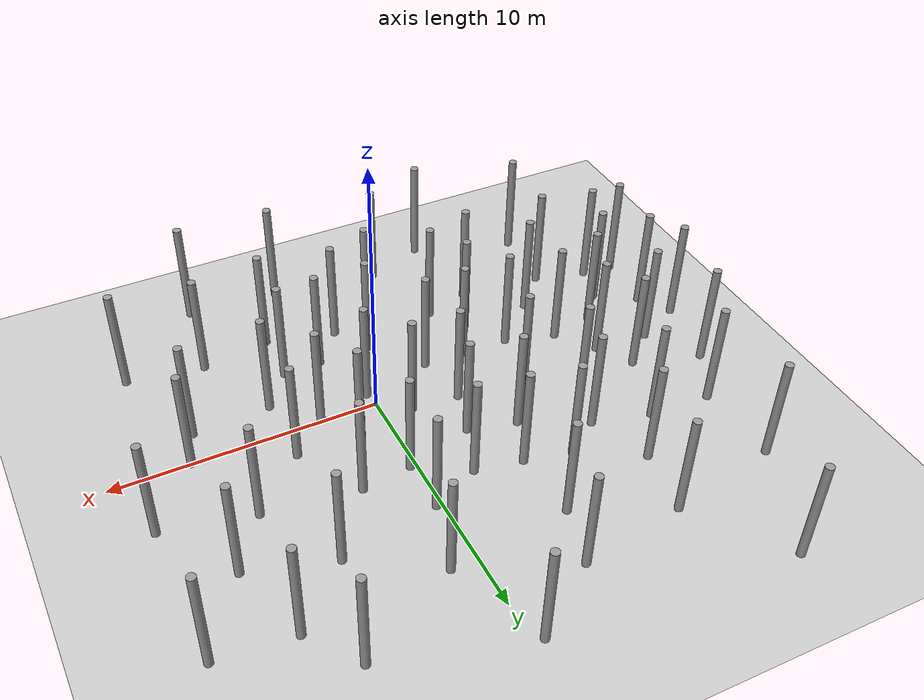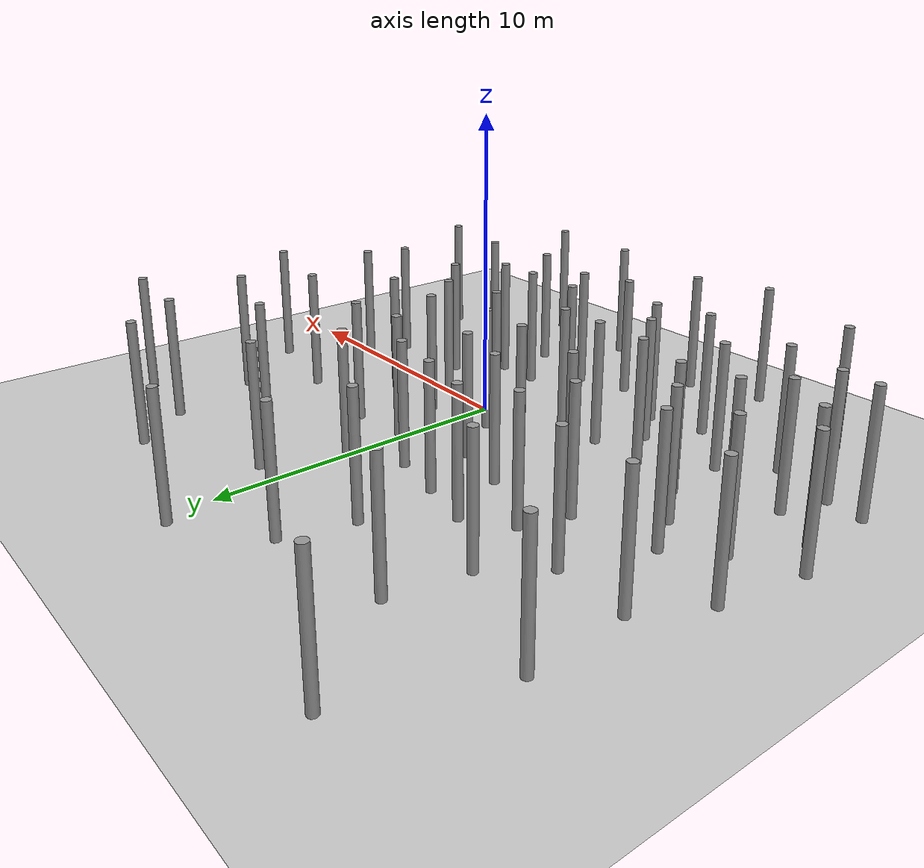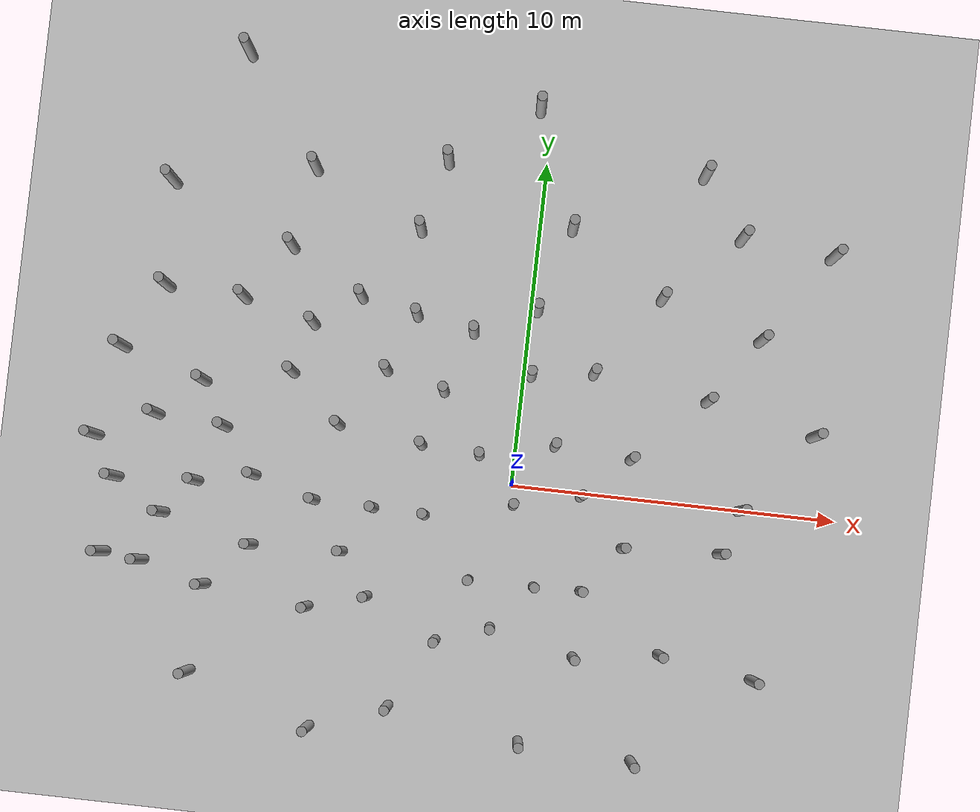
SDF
<sdf version="1.7">
 <world name="default">
  <model name="ground_plane">
   <static>1</static>
   <link name="link">
    <collision name="collision">
     <geometry><plane><normal>0 0 1</normal><size>100 100</size></plane></geometry>
     <surface>
      <contact><collide_bitmask>65535</collide_bitmask></contact>
      <friction><ode><mu>100</mu><mu2>50</mu2></ode></friction>
     </surface>
    </collision>
    <visual name="visual">
     <cast_shadows>0</cast_shadows>
     <geometry><plane><normal>0 0 1</normal><size>100 100</size></plane></geometry>
     <material>
      <script><uri>file://media/materials/scripts/gazebo.material</uri><name>Gazebo/Grey</name></script>
     </material>
    </visual>
   </link>
  </model>
  <gravity>0 0 -9.8</gravity>
  <magnetic_field>6e-06 2.3e-05 -4.2e-05</magnetic_field>
  <atmosphere type="adiabatic"/>
  <physics type="ode">
   <max_step_size>0.001</max_step_size>
   <real_time_factor>1</real_time_factor>
   <real_time_update_rate>1000</real_time_update_rate>
  </physics>
  <scene><ambient>0.4 0.4 0.4 1</ambient><background>0.7 0.7 0.7 1</background><shadows>1</shadows></scene>
  <spherical_coordinates>
   <surface_model>EARTH_WGS84</surface_model>
   <latitude_deg>0</latitude_deg>
   <longitude_deg>0</longitude_deg>
   <elevation>0</elevation>
   <heading_deg>0</heading_deg>
  </spherical_coordinates>
  <model name="unit_cylinder_clone">
   <pose>3.56282 -1.52585 2.03419 0 0 -0.080417</pose>
   <link name="link">
    <inertial>
     <mass>1</mass>
     <inertia><ixx>0.145833</ixx><ixy>0</ixy><ixz>0</ixz><iyy>0.145833</iyy><iyz>0</iyz><izz>0.125</izz></inertia>
    </inertial>
    <collision name="collision">
     <geometry><cylinder><radius>0.15453</radius><length>4.06839</length></cylinder></geometry>
    </collision>
    <visual name="visual">
     <geometry><cylinder><radius>0.15453</radius><length>4.06839</length></cylinder></geometry>
     <material>
      <script><name>Gazebo/Grey</name><uri>file://media/materials/scripts/gazebo.material</uri></script>
     </material>
    </visual>
   </link>
  </model>
  <model name="unit_cylinder_clone_0">
   <pose>3.54015 1.18763 2.03419 0 0 -0.066603</pose>
   <link name="link">
    <inertial>
     <mass>1</mass>
     <inertia><ixx>0.145833</ixx><ixy>0</ixy><ixz>0</ixz><iyy>0.145833</iyy><iyz>0</iyz><izz>0.125</izz></inertia>
    </inertial>
    <collision name="collision">
     <geometry><cylinder><radius>0.15453</radius><length>4.06839</length></cylinder></geometry>
    </collision>
    <visual name="visual">
     <geometry><cylinder><radius>0.15453</radius><length>4.06839</length></cylinder></geometry>
     <material>
      <script><name>Gazebo/Grey</name><uri>file://media/materials/scripts/gazebo.material</uri></script>
     </material>
    </visual>
   </link>
  </model>
  <light name="user_directional_light_0" type="directional">
   <pose>-4.64306 0.087706 1 0 -0 0</pose>
   <diffuse>0.5 0.5 0.5 1</diffuse>
   <specular>0.1 0.1 0.1 1</specular>
   <direction>0.1 0.1 -0.9</direction>
   <attenuation>
    <range>20</range>
    <constant>0.5</constant>
    <linear>0.01</linear>
    <quadratic>0.001</quadratic>
   </attenuation>
   <spot><inner_angle>0</inner_angle><outer_angle>0</outer_angle><falloff>0</falloff></spot>
  </light>
  <model name="unit_cylinder_clone_0_clone_clone_5">
   <pose>-5.44413 1.27278 2.03419 0 0 -0.077731</pose>
   <link name="link">
    <inertial>
     <mass>1</mass>
     <inertia><ixx>0.145833</ixx><ixy>0</ixy><ixz>0</ixz><iyy>0.145833</iyy><iyz>0</iyz><izz>0.125</izz></inertia>
    </inertial>
    <collision name="collision">
     <geometry><cylinder><radius>0.15453</radius><length>4.06839</length></cylinder></geometry>
    </collision>
    <visual name="visual">
     <geometry><cylinder><radius>0.15453</radius><length>4.06839</length></cylinder></geometry>
     <material>
      <script><name>Gazebo/Grey</name><uri>file://media/materials/scripts/gazebo.material</uri></script>
     </material>
    </visual>
   </link>
  </model>
  <model name="unit_cylinder_clone_0_clone_clone_4_clone">
   <pose>-4.13256 -1.13531 2.03419 0 0 -0.076185</pose>
   <link name="link">
    <inertial>
     <mass>1</mass>
     <inertia><ixx>0.145833</ixx><ixy>0</ixy><ixz>0</ixz><iyy>0.145833</iyy><iyz>0</iyz><izz>0.125</izz></inertia>
    </inertial>
    <collision name="collision">
     <geometry><cylinder><radius>0.15453</radius><length>4.06839</length></cylinder></geometry>
    </collision>
    <visual name="visual">
     <geometry><cylinder><radius>0.15453</radius><length>4.06839</length></cylinder></geometry>
     <material>
      <script><name>Gazebo/Grey</name><uri>file://media/materials/scripts/gazebo.material</uri></script>
     </material>
    </visual>
   </link>
  </model>
  <model name="unit_cylinder_clone_0_clone_clone_4_clone_1">
   <pose>1.18499 1.34128 2.03419 0 0 -0.122178</pose>
   <link name="link">
    <inertial>
     <mass>1</mass>
     <inertia><ixx>0.145833</ixx><ixy>0</ixy><ixz>0</ixz><iyy>0.145833</iyy><iyz>0</iyz><izz>0.125</izz></inertia>
    </inertial>
    <collision name="collision">
     <geometry><cylinder><radius>0.15453</radius><length>4.06839</length></cylinder></geometry>
    </collision>
    <visual name="visual">
     <geometry><cylinder><radius>0.15453</radius><length>4.06839</length></cylinder></geometry>
     <material>
      <script><name>Gazebo/Grey</name><uri>file://media/materials/scripts/gazebo.material</uri></script>
     </material>
    </visual>
   </link>
  </model>
  <model name="unit_cylinder_clone_0_clone_clone_4_clone_3">
   <pose>-12.7821 0.162313 2.03419 0 0 -0.079303</pose>
   <link name="link">
    <inertial>
     <mass>1</mass>
     <inertia><ixx>0.145833</ixx><ixy>0</ixy><ixz>0</ixz><iyy>0.145833</iyy><iyz>0</iyz><izz>0.125</izz></inertia>
    </inertial>
    <collision name="collision">
     <geometry><cylinder><radius>0.15453</radius><length>4.06839</length></cylinder></geometry>
    </collision>
    <visual name="visual">
     <geometry><cylinder><radius>0.15453</radius><length>4.06839</length></cylinder></geometry>
     <material>
      <script><name>Gazebo/Grey</name><uri>file://media/materials/scripts/gazebo.material</uri></script>
     </material>
    </visual>
   </link>
  </model>
  <model name="unit_cylinder_clone_0_clone_clone_1_clone_0">
   <pose>-2.55899 -1.17866 2.03419 0 0 -0.07945</pose>
   <link name="link">
    <inertial>
     <mass>1</mass>
     <inertia><ixx>0.145833</ixx><ixy>0</ixy><ixz>0</ixz><iyy>0.145833</iyy><iyz>0</iyz><izz>0.125</izz></inertia>
    </inertial>
    <collision name="collision">
     <geometry><cylinder><radius>0.15453</radius><length>4.06839</length></cylinder></geometry>
    </collision>
    <visual name="visual">
     <geometry><cylinder><radius>0.15453</radius><length>4.06839</length></cylinder></geometry>
     <material>
      <script><name>Gazebo/Grey</name><uri>file://media/materials/scripts/gazebo.material</uri></script>
     </material>
    </visual>
   </link>
  </model>
  <model name="unit_cylinder_clone_0_clone_clone_10_clone">
   <pose>-8.888 0.841534 2.03419 0 0 -0.078226</pose>
   <link name="link">
    <inertial>
     <mass>1</mass>
     <inertia><ixx>0.145833</ixx><ixy>0</ixy><ixz>0</ixz><iyy>0.145833</iyy><iyz>0</iyz><izz>0.125</izz></inertia>
    </inertial>
    <collision name="collision">
     <geometry><cylinder><radius>0.15453</radius><length>4.06839</length></cylinder></geometry>
    </collision>
    <visual name="visual">
     <geometry><cylinder><radius>0.15453</radius><length>4.06839</length></cylinder></geometry>
     <material>
      <script><name>Gazebo/Grey</name><uri>file://media/materials/scripts/gazebo.material</uri></script>
     </material>
    </visual>
   </link>
  </model>
  <model name="unit_cylinder_clone_0_clone_clone_4_clone_0_clone">
   <pose>2.13275 -0.105282 2.03419 0 0 -0.082582</pose>
   <link name="link">
    <inertial>
     <mass>1</mass>
     <inertia><ixx>0.145833</ixx><ixy>0</ixy><ixz>0</ixz><iyy>0.145833</iyy><iyz>0</iyz><izz>0.125</izz></inertia>
    </inertial>
    <collision name="collision">
     <geometry><cylinder><radius>0.15453</radius><length>4.06839</length></cylinder></geometry>
    </collision>
    <visual name="visual">
     <geometry><cylinder><radius>0.15453</radius><length>4.06839</length></cylinder></geometry>
     <material>
      <script><name>Gazebo/Grey</name><uri>file://media/materials/scripts/gazebo.material</uri></script>
     </material>
    </visual>
   </link>
  </model>
  <model name="unit_cylinder_clone_0_clone_clone_4_clone_0_clone_0">
   <pose>-1.07819 0.818908 2.03419 0 0 -0.080683</pose>
   <link name="link">
    <inertial>
     <mass>1</mass>
     <inertia><ixx>0.145833</ixx><ixy>0</ixy><ixz>0</ixz><iyy>0.145833</iyy><iyz>0</iyz><izz>0.125</izz></inertia>
    </inertial>
    <collision name="collision">
     <geometry><cylinder><radius>0.15453</radius><length>4.06839</length></cylinder></geometry>
    </collision>
    <visual name="visual">
     <geometry><cylinder><radius>0.15453</radius><length>4.06839</length></cylinder></geometry>
     <material>
      <script><name>Gazebo/Grey</name><uri>file://media/materials/scripts/gazebo.material</uri></script>
     </material>
    </visual>
   </link>
  </model>
  <model name="unit_cylinder_clone_0_clone_clone_1_clone_0_clone">
   <pose>0.118793 -0.584123 2.03419 0 0 -0.106499</pose>
   <link name="link">
    <inertial>
     <mass>1</mass>
     <inertia><ixx>0.145833</ixx><ixy>0</ixy><ixz>0</ixz><iyy>0.145833</iyy><iyz>0</iyz><izz>0.125</izz></inertia>
    </inertial>
    <collision name="collision">
     <geometry><cylinder><radius>0.15453</radius><length>4.06839</length></cylinder></geometry>
    </collision>
    <visual name="visual">
     <geometry><cylinder><radius>0.15453</radius><length>4.06839</length></cylinder></geometry>
     <material>
      <script><name>Gazebo/Grey</name><uri>file://media/materials/scripts/gazebo.material</uri></script>
     </material>
    </visual>
   </link>
  </model>
  <model name="unit_cylinder_clone_0_clone_clone_1_clone_0_clone_0">
   <pose>-2.87341 0.941535 2.03419 0 0 -0.07922</pose>
   <link name="link">
    <inertial>
     <mass>1</mass>
     <inertia><ixx>0.145833</ixx><ixy>0</ixy><ixz>0</ixz><iyy>0.145833</iyy><iyz>0</iyz><izz>0.125</izz></inertia>
    </inertial>
    <collision name="collision">
     <geometry><cylinder><radius>0.15453</radius><length>4.06839</length></cylinder></geometry>
    </collision>
    <visual name="visual">
     <geometry><cylinder><radius>0.15453</radius><length>4.06839</length></cylinder></geometry>
     <material>
      <script><name>Gazebo/Grey</name><uri>file://media/materials/scripts/gazebo.material</uri></script>
     </material>
    </visual>
   </link>
  </model>
  <model name="unit_cylinder_clone_0_clone_clone_1_clone_0_clone_2">
   <pose>-10.9993 1.00066 2.03419 0 0 -0.077661</pose>
   <link name="link">
    <inertial>
     <mass>1</mass>
     <inertia><ixx>0.145833</ixx><ixy>0</ixy><ixz>0</ixz><iyy>0.145833</iyy><iyz>0</iyz><izz>0.125</izz></inertia>
    </inertial>
    <collision name="collision">
     <geometry><cylinder><radius>0.15453</radius><length>4.06839</length></cylinder></geometry>
    </collision>
    <visual name="visual">
     <geometry><cylinder><radius>0.15453</radius><length>4.06839</length></cylinder></geometry>
     <material>
      <script><name>Gazebo/Grey</name><uri>file://media/materials/scripts/gazebo.material</uri></script>
     </material>
    </visual>
   </link>
  </model>
  <model name="unit_cylinder_clone_0_clone_clone_10_clone_2">
   <pose>-5.95223 -1.08544 2.03419 0 0 -0.078125</pose>
   <link name="link">
    <inertial>
     <mass>1</mass>
     <inertia><ixx>0.145833</ixx><ixy>0</ixy><ixz>0</ixz><iyy>0.145833</iyy><iyz>0</iyz><izz>0.125</izz></inertia>
    </inertial>
    <collision name="collision">
     <geometry><cylinder><radius>0.15453</radius><length>4.06839</length></cylinder></geometry>
    </collision>
    <visual name="visual">
     <geometry><cylinder><radius>0.15453</radius><length>4.06839</length></cylinder></geometry>
     <material>
      <script><name>Gazebo/Grey</name><uri>file://media/materials/scripts/gazebo.material</uri></script>
     </material>
    </visual>
   </link>
  </model>
  <model name="unit_cylinder_clone_0_clone_clone_10_clone_clone_0_clone_0">
   <pose>-7.8464 -0.530261 2.03419 0 0 -0.039702</pose>
   <link name="link">
    <inertial>
     <mass>1</mass>
     <inertia><ixx>0.145833</ixx><ixy>0</ixy><ixz>0</ixz><iyy>0.145833</iyy><iyz>0</iyz><izz>0.125</izz></inertia>
    </inertial>
    <collision name="collision">
     <geometry><cylinder><radius>0.15453</radius><length>4.06839</length></cylinder></geometry>
    </collision>
    <visual name="visual">
     <geometry><cylinder><radius>0.15453</radius><length>4.06839</length></cylinder></geometry>
     <material>
      <script><name>Gazebo/Grey</name><uri>file://media/materials/scripts/gazebo.material</uri></script>
     </material>
    </visual>
   </link>
  </model>
  <model name="unit_cylinder_clone_0_clone_clone_4_clone_3_clone">
   <pose>-12.0371 -1.03779 2.03419 0 0 -0.079229</pose>
   <link name="link">
    <inertial>
     <mass>1</mass>
     <inertia><ixx>0.145833</ixx><ixy>0</ixy><ixz>0</ixz><iyy>0.145833</iyy><iyz>0</iyz><izz>0.125</izz></inertia>
    </inertial>
    <collision name="collision">
     <geometry><cylinder><radius>0.15453</radius><length>4.06839</length></cylinder></geometry>
    </collision>
    <visual name="visual">
     <geometry><cylinder><radius>0.15453</radius><length>4.06839</length></cylinder></geometry>
     <material>
      <script><name>Gazebo/Grey</name><uri>file://media/materials/scripts/gazebo.material</uri></script>
     </material>
    </visual>
   </link>
  </model>
  <model name="unit_cylinder_clone_0_clone_clone_4_clone_3_clone_0">
   <pose>-10.5056 -1.9675 2.03419 0 0 -0.079203</pose>
   <link name="link">
    <inertial>
     <mass>1</mass>
     <inertia><ixx>0.145833</ixx><ixy>0</ixy><ixz>0</ixz><iyy>0.145833</iyy><iyz>0</iyz><izz>0.125</izz></inertia>
    </inertial>
    <collision name="collision">
     <geometry><cylinder><radius>0.15453</radius><length>4.06839</length></cylinder></geometry>
    </collision>
    <visual name="visual">
     <geometry><cylinder><radius>0.15453</radius><length>4.06839</length></cylinder></geometry>
     <material>
      <script><name>Gazebo/Grey</name><uri>file://media/materials/scripts/gazebo.material</uri></script>
     </material>
    </visual>
   </link>
  </model>
  <model name="unit_cylinder_clone_0_clone_clone_4_clone_3_clone_1">
   <pose>-9.58441 -0.897949 2.03419 0 0 -0.078933</pose>
   <link name="link">
    <inertial>
     <mass>1</mass>
     <inertia><ixx>0.145833</ixx><ixy>0</ixy><ixz>0</ixz><iyy>0.145833</iyy><iyz>0</iyz><izz>0.125</izz></inertia>
    </inertial>
    <collision name="collision">
     <geometry><cylinder><radius>0.15453</radius><length>4.06839</length></cylinder></geometry>
    </collision>
    <visual name="visual">
     <geometry><cylinder><radius>0.15453</radius><length>4.06839</length></cylinder></geometry>
     <material>
      <script><name>Gazebo/Grey</name><uri>file://media/materials/scripts/gazebo.material</uri></script>
     </material>
    </visual>
   </link>
  </model>
  <model name="unit_cylinder_clone_0_clone_clone_4_clone_3_clone_2">
   <pose>-12.2416 2.93543 2.03419 0 0 -0.081629</pose>
   <link name="link">
    <inertial>
     <mass>1</mass>
     <inertia><ixx>0.145833</ixx><ixy>0</ixy><ixz>0</ixz><iyy>0.145833</iyy><iyz>0</iyz><izz>0.125</izz></inertia>
    </inertial>
    <collision name="collision">
     <geometry><cylinder><radius>0.15453</radius><length>4.06839</length></cylinder></geometry>
    </collision>
    <visual name="visual">
     <geometry><cylinder><radius>0.15453</radius><length>4.06839</length></cylinder></geometry>
     <material>
      <script><name>Gazebo/Grey</name><uri>file://media/materials/scripts/gazebo.material</uri></script>
     </material>
    </visual>
   </link>
  </model>
  <model name="unit_cylinder_clone_0_clone_clone_4_clone_3_clone_3">
   <pose>-9.67955 2.16879 2.03419 0 0 -0.07764</pose>
   <link name="link">
    <inertial>
     <mass>1</mass>
     <inertia><ixx>0.145833</ixx><ixy>0</ixy><ixz>0</ixz><iyy>0.145833</iyy><iyz>0</iyz><izz>0.125</izz></inertia>
    </inertial>
    <collision name="collision">
     <geometry><cylinder><radius>0.15453</radius><length>4.06839</length></cylinder></geometry>
    </collision>
    <visual name="visual">
     <geometry><cylinder><radius>0.15453</radius><length>4.06839</length></cylinder></geometry>
     <material>
      <script><name>Gazebo/Grey</name><uri>file://media/materials/scripts/gazebo.material</uri></script>
     </material>
    </visual>
   </link>
  </model>
  <model name="unit_cylinder_clone_0_clone_clone_4_clone_3_clone_4">
   <pose>-8.72412 4.82345 2.03419 0 0 -0.079536</pose>
   <link name="link">
    <inertial>
     <mass>1</mass>
     <inertia><ixx>0.145833</ixx><ixy>0</ixy><ixz>0</ixz><iyy>0.145833</iyy><iyz>0</iyz><izz>0.125</izz></inertia>
    </inertial>
    <collision name="collision">
     <geometry><cylinder><radius>0.15453</radius><length>4.06839</length></cylinder></geometry>
    </collision>
    <visual name="visual">
     <geometry><cylinder><radius>0.15453</radius><length>4.06839</length></cylinder></geometry>
     <material>
      <script><name>Gazebo/Grey</name><uri>file://media/materials/scripts/gazebo.material</uri></script>
     </material>
    </visual>
   </link>
  </model>
  <model name="unit_cylinder_clone_0_clone_clone_4_clone_3_clone_5">
   <pose>-7.02012 2.71779 2.03419 0 0 -0.077233</pose>
   <link name="link">
    <inertial>
     <mass>1</mass>
     <inertia><ixx>0.145833</ixx><ixy>0</ixy><ixz>0</ixz><iyy>0.145833</iyy><iyz>0</iyz><izz>0.125</izz></inertia>
    </inertial>
    <collision name="collision">
     <geometry><cylinder><radius>0.15453</radius><length>4.06839</length></cylinder></geometry>
    </collision>
    <visual name="visual">
     <geometry><cylinder><radius>0.15453</radius><length>4.06839</length></cylinder></geometry>
     <material>
      <script><name>Gazebo/Grey</name><uri>file://media/materials/scripts/gazebo.material</uri></script>
     </material>
    </visual>
   </link>
  </model>
  <model name="unit_cylinder_clone_0_clone_clone_4_clone_3_clone_6">
   <pose>-8.99968 -3.99971 2.03419 0 0 -0.077397</pose>
   <link name="link">
    <inertial>
     <mass>1</mass>
     <inertia><ixx>0.145833</ixx><ixy>0</ixy><ixz>0</ixz><iyy>0.145833</iyy><iyz>0</iyz><izz>0.125</izz></inertia>
    </inertial>
    <collision name="collision">
     <geometry><cylinder><radius>0.15453</radius><length>4.06839</length></cylinder></geometry>
    </collision>
    <visual name="visual">
     <geometry><cylinder><radius>0.15453</radius><length>4.06839</length></cylinder></geometry>
     <material>
      <script><name>Gazebo/Grey</name><uri>file://media/materials/scripts/gazebo.material</uri></script>
     </material>
    </visual>
   </link>
  </model>
  <model name="unit_cylinder_clone_0_clone_clone_10_clone_clone_0_clone_0_clone">
   <pose>-7.69252 -2.64606 2.03419 0 0 -0.040415</pose>
   <link name="link">
    <inertial>
     <mass>1</mass>
     <inertia><ixx>0.145833</ixx><ixy>0</ixy><ixz>0</ixz><iyy>0.145833</iyy><iyz>0</iyz><izz>0.125</izz></inertia>
    </inertial>
    <collision name="collision">
     <geometry><cylinder><radius>0.15453</radius><length>4.06839</length></cylinder></geometry>
    </collision>
    <visual name="visual">
     <geometry><cylinder><radius>0.15453</radius><length>4.06839</length></cylinder></geometry>
     <material>
      <script><name>Gazebo/Grey</name><uri>file://media/materials/scripts/gazebo.material</uri></script>
     </material>
    </visual>
   </link>
  </model>
  <model name="unit_cylinder_clone_0_clone_clone_10_clone_clone_0_clone_0_clone_0">
   <pose>-6.5513 4.26632 2.03419 0 0 -0.040332</pose>
   <link name="link">
    <inertial>
     <mass>1</mass>
     <inertia><ixx>0.145833</ixx><ixy>0</ixy><ixz>0</ixz><iyy>0.145833</iyy><iyz>0</iyz><izz>0.125</izz></inertia>
    </inertial>
    <collision name="collision">
     <geometry><cylinder><radius>0.15453</radius><length>4.06839</length></cylinder></geometry>
    </collision>
    <visual name="visual">
     <geometry><cylinder><radius>0.15453</radius><length>4.06839</length></cylinder></geometry>
     <material>
      <script><name>Gazebo/Grey</name><uri>file://media/materials/scripts/gazebo.material</uri></script>
     </material>
    </visual>
   </link>
  </model>
  <model name="unit_cylinder_clone_0_clone_clone_10_clone_clone_0_clone_0_clone_1">
   <pose>-4.1708 3.08791 2.03419 0 0 -0.03936</pose>
   <link name="link">
    <inertial>
     <mass>1</mass>
     <inertia><ixx>0.145833</ixx><ixy>0</ixy><ixz>0</ixz><iyy>0.145833</iyy><iyz>0</iyz><izz>0.125</izz></inertia>
    </inertial>
    <collision name="collision">
     <geometry><cylinder><radius>0.15453</radius><length>4.06839</length></cylinder></geometry>
    </collision>
    <visual name="visual">
     <geometry><cylinder><radius>0.15453</radius><length>4.06839</length></cylinder></geometry>
     <material>
      <script><name>Gazebo/Grey</name><uri>file://media/materials/scripts/gazebo.material</uri></script>
     </material>
    </visual>
   </link>
  </model>
  <model name="unit_cylinder_clone_0_clone_clone_10_clone_clone_0_clone_0_clone_2">
   <pose>-5.80436 -4.34099 2.03419 0 0 -0.037518</pose>
   <link name="link">
    <inertial>
     <mass>1</mass>
     <inertia><ixx>0.145833</ixx><ixy>0</ixy><ixz>0</ixz><iyy>0.145833</iyy><iyz>0</iyz><izz>0.125</izz></inertia>
    </inertial>
    <collision name="collision">
     <geometry><cylinder><radius>0.15453</radius><length>4.06839</length></cylinder></geometry>
    </collision>
    <visual name="visual">
     <geometry><cylinder><radius>0.15453</radius><length>4.06839</length></cylinder></geometry>
     <material>
      <script><name>Gazebo/Grey</name><uri>file://media/materials/scripts/gazebo.material</uri></script>
     </material>
    </visual>
   </link>
  </model>
  <model name="unit_cylinder_clone_0_clone_clone_10_clone_clone_0_clone_0_clone_3">
   <pose>-4.03808 -3.83532 2.03419 0 0 -0.039812</pose>
   <link name="link">
    <inertial>
     <mass>1</mass>
     <inertia><ixx>0.145833</ixx><ixy>0</ixy><ixz>0</ixz><iyy>0.145833</iyy><iyz>0</iyz><izz>0.125</izz></inertia>
    </inertial>
    <collision name="collision">
     <geometry><cylinder><radius>0.15453</radius><length>4.06839</length></cylinder></geometry>
    </collision>
    <visual name="visual">
     <geometry><cylinder><radius>0.15453</radius><length>4.06839</length></cylinder></geometry>
     <material>
      <script><name>Gazebo/Grey</name><uri>file://media/materials/scripts/gazebo.material</uri></script>
     </material>
    </visual>
   </link>
  </model>
  <model name="unit_cylinder_clone_0_clone_clone_10_clone_clone_0_clone_0_clone_4">
   <pose>-0.999747 -2.99977 2.03419 0 0 -0.039479</pose>
   <link name="link">
    <inertial>
     <mass>1</mass>
     <inertia><ixx>0.145833</ixx><ixy>0</ixy><ixz>0</ixz><iyy>0.145833</iyy><iyz>0</iyz><izz>0.125</izz></inertia>
    </inertial>
    <collision name="collision">
     <geometry><cylinder><radius>0.15453</radius><length>4.06839</length></cylinder></geometry>
    </collision>
    <visual name="visual">
     <geometry><cylinder><radius>0.15453</radius><length>4.06839</length></cylinder></geometry>
     <material>
      <script><name>Gazebo/Grey</name><uri>file://media/materials/scripts/gazebo.material</uri></script>
     </material>
    </visual>
   </link>
  </model>
  <model name="unit_cylinder_clone_0_clone_clone_10_clone_clone_0_clone_0_clone_5">
   <pose>-1.6541 4.52771 2.03419 0 0 -0.036042</pose>
   <link name="link">
    <inertial>
     <mass>1</mass>
     <inertia><ixx>0.145833</ixx><ixy>0</ixy><ixz>0</ixz><iyy>0.145833</iyy><iyz>0</iyz><izz>0.125</izz></inertia>
    </inertial>
    <collision name="collision">
     <geometry><cylinder><radius>0.15453</radius><length>4.06839</length></cylinder></geometry>
    </collision>
    <visual name="visual">
     <geometry><cylinder><radius>0.15453</radius><length>4.06839</length></cylinder></geometry>
     <material>
      <script><name>Gazebo/Grey</name><uri>file://media/materials/scripts/gazebo.material</uri></script>
     </material>
    </visual>
   </link>
  </model>
  <model name="unit_cylinder_clone_0_clone_clone_10_clone_clone_0_clone_0_clone_6">
   <pose>-2.36154 2.63582 2.03419 0 0 -0.039524</pose>
   <link name="link">
    <inertial>
     <mass>1</mass>
     <inertia><ixx>0.145833</ixx><ixy>0</ixy><ixz>0</ixz><iyy>0.145833</iyy><iyz>0</iyz><izz>0.125</izz></inertia>
    </inertial>
    <collision name="collision">
     <geometry><cylinder><radius>0.15453</radius><length>4.06839</length></cylinder></geometry>
    </collision>
    <visual name="visual">
     <geometry><cylinder><radius>0.15453</radius><length>4.06839</length></cylinder></geometry>
     <material>
      <script><name>Gazebo/Grey</name><uri>file://media/materials/scripts/gazebo.material</uri></script>
     </material>
    </visual>
   </link>
  </model>
  <model name="unit_cylinder_clone_0_clone_clone_10_clone_clone_0_clone_0_clone_7">
   <pose>-5.17253 5.22792 2.03419 0 0 -0.039548</pose>
   <link name="link">
    <inertial>
     <mass>1</mass>
     <inertia><ixx>0.145833</ixx><ixy>0</ixy><ixz>0</ixz><iyy>0.145833</iyy><iyz>0</iyz><izz>0.125</izz></inertia>
    </inertial>
    <collision name="collision">
     <geometry><cylinder><radius>0.15453</radius><length>4.06839</length></cylinder></geometry>
    </collision>
    <visual name="visual">
     <geometry><cylinder><radius>0.15453</radius><length>4.06839</length></cylinder></geometry>
     <material>
      <script><name>Gazebo/Grey</name><uri>file://media/materials/scripts/gazebo.material</uri></script>
     </material>
    </visual>
   </link>
  </model>
  <model name="unit_cylinder_clone_0_clone_clone_10_clone_clone_0_clone_0_clone_8">
   <pose>0.228824 3.40053 2.03419 0 0 -0.039519</pose>
   <link name="link">
    <inertial>
     <mass>1</mass>
     <inertia><ixx>0.145833</ixx><ixy>0</ixy><ixz>0</ixz><iyy>0.145833</iyy><iyz>0</iyz><izz>0.125</izz></inertia>
    </inertial>
    <collision name="collision">
     <geometry><cylinder><radius>0.15453</radius><length>4.06839</length></cylinder></geometry>
    </collision>
    <visual name="visual">
     <geometry><cylinder><radius>0.15453</radius><length>4.06839</length></cylinder></geometry>
     <material>
      <script><name>Gazebo/Grey</name><uri>file://media/materials/scripts/gazebo.material</uri></script>
     </material>
    </visual>
   </link>
  </model>
  <model name="unit_cylinder_clone_0_clone_clone_10_clone_clone_0_clone_0_clone_9">
   <pose>1.0002 -2.99981 2.03419 0 0 -0.039671</pose>
   <link name="link">
    <inertial>
     <mass>1</mass>
     <inertia><ixx>0.145833</ixx><ixy>0</ixy><ixz>0</ixz><iyy>0.145833</iyy><iyz>0</iyz><izz>0.125</izz></inertia>
    </inertial>
    <collision name="collision">
     <geometry><cylinder><radius>0.15453</radius><length>4.06839</length></cylinder></geometry>
    </collision>
    <visual name="visual">
     <geometry><cylinder><radius>0.15453</radius><length>4.06839</length></cylinder></geometry>
     <material>
      <script><name>Gazebo/Grey</name><uri>file://media/materials/scripts/gazebo.material</uri></script>
     </material>
    </visual>
   </link>
  </model>
  <model name="unit_cylinder_clone_0_clone_clone_10_clone_clone_0_clone_0_clone_10">
   <pose>-1.80537 -4.94179 2.03419 0 0 -0.039617</pose>
   <link name="link">
    <inertial>
     <mass>1</mass>
     <inertia><ixx>0.145833</ixx><ixy>0</ixy><ixz>0</ixz><iyy>0.145833</iyy><iyz>0</iyz><izz>0.125</izz></inertia>
    </inertial>
    <collision name="collision">
     <geometry><cylinder><radius>0.15453</radius><length>4.06839</length></cylinder></geometry>
    </collision>
    <visual name="visual">
     <geometry><cylinder><radius>0.15453</radius><length>4.06839</length></cylinder></geometry>
     <material>
      <script><name>Gazebo/Grey</name><uri>file://media/materials/scripts/gazebo.material</uri></script>
     </material>
    </visual>
   </link>
  </model>
  <model name="unit_cylinder_clone_0_clone_clone_10_clone_clone_0_clone_0_clone_11">
   <pose>-12.1699 -3.35103 2.03419 0 0 -0.039742</pose>
   <link name="link">
    <inertial>
     <mass>1</mass>
     <inertia><ixx>0.145833</ixx><ixy>0</ixy><ixz>0</ixz><iyy>0.145833</iyy><iyz>0</iyz><izz>0.125</izz></inertia>
    </inertial>
    <collision name="collision">
     <geometry><cylinder><radius>0.15453</radius><length>4.06839</length></cylinder></geometry>
    </collision>
    <visual name="visual">
     <geometry><cylinder><radius>0.15453</radius><length>4.06839</length></cylinder></geometry>
     <material>
      <script><name>Gazebo/Grey</name><uri>file://media/materials/scripts/gazebo.material</uri></script>
     </material>
    </visual>
   </link>
  </model>
  <model name="unit_cylinder_clone_0_clone_clone_10_clone_clone_0_clone_0_clone_12">
   <pose>-11.1103 4.93311 2.03419 0 0 -0.039255</pose>
   <link name="link">
    <inertial>
     <mass>1</mass>
     <inertia><ixx>0.145833</ixx><ixy>0</ixy><ixz>0</ixz><iyy>0.145833</iyy><iyz>0</iyz><izz>0.125</izz></inertia>
    </inertial>
    <collision name="collision">
     <geometry><cylinder><radius>0.15453</radius><length>4.06839</length></cylinder></geometry>
    </collision>
    <visual name="visual">
     <geometry><cylinder><radius>0.15453</radius><length>4.06839</length></cylinder></geometry>
     <material>
      <script><name>Gazebo/Grey</name><uri>file://media/materials/scripts/gazebo.material</uri></script>
     </material>
    </visual>
   </link>
  </model>
  <model name="unit_cylinder_clone_0_clone_clone_10_clone_clone_0_clone_0_clone_13">
   <pose>-3.42368 4.85319 2.03419 0 0 -0.039469</pose>
   <link name="link">
    <inertial>
     <mass>1</mass>
     <inertia><ixx>0.145833</ixx><ixy>0</ixy><ixz>0</ixz><iyy>0.145833</iyy><iyz>0</iyz><izz>0.125</izz></inertia>
    </inertial>
    <collision name="collision">
     <geometry><cylinder><radius>0.15453</radius><length>4.06839</length></cylinder></geometry>
    </collision>
    <visual name="visual">
     <geometry><cylinder><radius>0.15453</radius><length>4.06839</length></cylinder></geometry>
     <material>
      <script><name>Gazebo/Grey</name><uri>file://media/materials/scripts/gazebo.material</uri></script>
     </material>
    </visual>
   </link>
  </model>
  <model name="unit_cylinder_clone_0_clone_clone_10_clone_clone_0_clone_0_clone_14">
   <pose>0.211594 5.4019 2.03419 0 0 -0.039531</pose>
   <link name="link">
    <inertial>
     <mass>1</mass>
     <inertia><ixx>0.145833</ixx><ixy>0</ixy><ixz>0</ixz><iyy>0.145833</iyy><iyz>0</iyz><izz>0.125</izz></inertia>
    </inertial>
    <collision name="collision">
     <geometry><cylinder><radius>0.15453</radius><length>4.06839</length></cylinder></geometry>
    </collision>
    <visual name="visual">
     <geometry><cylinder><radius>0.15453</radius><length>4.06839</length></cylinder></geometry>
     <material>
      <script><name>Gazebo/Grey</name><uri>file://media/materials/scripts/gazebo.material</uri></script>
     </material>
    </visual>
   </link>
  </model>
  <model name="unit_cylinder_clone_0_clone_clone_10_clone_clone_0_clone_0_clone_15">
   <pose>2.12826 3.66115 2.03419 0 0 -0.039494</pose>
   <link name="link">
    <inertial>
     <mass>1</mass>
     <inertia><ixx>0.145833</ixx><ixy>0</ixy><ixz>0</ixz><iyy>0.145833</iyy><iyz>0</iyz><izz>0.125</izz></inertia>
    </inertial>
    <collision name="collision">
     <geometry><cylinder><radius>0.15453</radius><length>4.06839</length></cylinder></geometry>
    </collision>
    <visual name="visual">
     <geometry><cylinder><radius>0.15453</radius><length>4.06839</length></cylinder></geometry>
     <material>
      <script><name>Gazebo/Grey</name><uri>file://media/materials/scripts/gazebo.material</uri></script>
     </material>
    </visual>
   </link>
  </model>
  <model name="unit_cylinder_clone_0_clone_clone_10_clone_clone_0_clone_0_clone_16">
   <pose>2.43996 -2.96502 2.03419 0 0 -0.039417</pose>
   <link name="link">
    <inertial>
     <mass>1</mass>
     <inertia><ixx>0.145833</ixx><ixy>0</ixy><ixz>0</ixz><iyy>0.145833</iyy><iyz>0</iyz><izz>0.125</izz></inertia>
    </inertial>
    <collision name="collision">
     <geometry><cylinder><radius>0.15453</radius><length>4.06839</length></cylinder></geometry>
    </collision>
    <visual name="visual">
     <geometry><cylinder><radius>0.15453</radius><length>4.06839</length></cylinder></geometry>
     <material>
      <script><name>Gazebo/Grey</name><uri>file://media/materials/scripts/gazebo.material</uri></script>
     </material>
    </visual>
   </link>
  </model>
  <model name="unit_cylinder_clone_0_clone_clone_10_clone_clone_0_clone_0_clone_17">
   <pose>-0.187783 -4.37406 2.03419 0 0 -0.039588</pose>
   <link name="link">
    <inertial>
     <mass>1</mass>
     <inertia><ixx>0.145833</ixx><ixy>0</ixy><ixz>0</ixz><iyy>0.145833</iyy><iyz>0</iyz><izz>0.125</izz></inertia>
    </inertial>
    <collision name="collision">
     <geometry><cylinder><radius>0.15453</radius><length>4.06839</length></cylinder></geometry>
    </collision>
    <visual name="visual">
     <geometry><cylinder><radius>0.15453</radius><length>4.06839</length></cylinder></geometry>
     <material>
      <script><name>Gazebo/Grey</name><uri>file://media/materials/scripts/gazebo.material</uri></script>
     </material>
    </visual>
   </link>
  </model>
  <model name="unit_cylinder_clone_0_clone_clone_10_clone_clone_0_clone_0_clone_18">
   <pose>-4.94163 -2.55816 2.03419 0 0 -0.039466</pose>
   <link name="link">
    <inertial>
     <mass>1</mass>
     <inertia><ixx>0.145833</ixx><ixy>0</ixy><ixz>0</ixz><iyy>0.145833</iyy><iyz>0</iyz><izz>0.125</izz></inertia>
    </inertial>
    <collision name="collision">
     <geometry><cylinder><radius>0.15453</radius><length>4.06839</length></cylinder></geometry>
    </collision>
    <visual name="visual">
     <geometry><cylinder><radius>0.15453</radius><length>4.06839</length></cylinder></geometry>
     <material>
      <script><name>Gazebo/Grey</name><uri>file://media/materials/scripts/gazebo.material</uri></script>
     </material>
    </visual>
   </link>
  </model>
  <model name="unit_cylinder_clone_0_clone_clone_10_clone_clone_0_clone_0_clone_19">
   <pose>-10.9831 -3.47416 2.03419 0 0 -0.039553</pose>
   <link name="link">
    <inertial>
     <mass>1</mass>
     <inertia><ixx>0.145833</ixx><ixy>0</ixy><ixz>0</ixz><iyy>0.145833</iyy><iyz>0</iyz><izz>0.125</izz></inertia>
    </inertial>
    <collision name="collision">
     <geometry><cylinder><radius>0.15453</radius><length>4.06839</length></cylinder></geometry>
    </collision>
    <visual name="visual">
     <geometry><cylinder><radius>0.15453</radius><length>4.06839</length></cylinder></geometry>
     <material>
      <script><name>Gazebo/Grey</name><uri>file://media/materials/scripts/gazebo.material</uri></script>
     </material>
    </visual>
   </link>
  </model>
  <model name="unit_cylinder_clone_0_clone_clone_10_clone_clone_0_clone_0_clone_20">
   <pose>-7.44308 6.53061 2.03419 0 0 -0.039672</pose>
   <link name="link">
    <inertial>
     <mass>1</mass>
     <inertia><ixx>0.145833</ixx><ixy>0</ixy><ixz>0</ixz><iyy>0.145833</iyy><iyz>0</iyz><izz>0.125</izz></inertia>
    </inertial>
    <collision name="collision">
     <geometry><cylinder><radius>0.15453</radius><length>4.06839</length></cylinder></geometry>
    </collision>
    <visual name="visual">
     <geometry><cylinder><radius>0.15453</radius><length>4.06839</length></cylinder></geometry>
     <material>
      <script><name>Gazebo/Grey</name><uri>file://media/materials/scripts/gazebo.material</uri></script>
     </material>
    </visual>
   </link>
  </model>
  <model name="unit_cylinder_clone_0_clone_clone_10_clone_clone_0_clone_0_clone_21">
   <pose>-3.60067 7.46345 2.03419 0 0 -0.039528</pose>
   <link name="link">
    <inertial>
     <mass>1</mass>
     <inertia><ixx>0.145833</ixx><ixy>0</ixy><ixz>0</ixz><iyy>0.145833</iyy><iyz>0</iyz><izz>0.125</izz></inertia>
    </inertial>
    <collision name="collision">
     <geometry><cylinder><radius>0.15453</radius><length>4.06839</length></cylinder></geometry>
    </collision>
    <visual name="visual">
     <geometry><cylinder><radius>0.15453</radius><length>4.06839</length></cylinder></geometry>
     <material>
      <script><name>Gazebo/Grey</name><uri>file://media/materials/scripts/gazebo.material</uri></script>
     </material>
    </visual>
   </link>
  </model>
  <model name="unit_cylinder_clone_0_clone_clone_10_clone_clone_0_clone_0_clone_22">
   <pose>2.42369 -4.99995 2.03419 0 0 -0.039648</pose>
   <link name="link">
    <inertial>
     <mass>1</mass>
     <inertia><ixx>0.145833</ixx><ixy>0</ixy><ixz>0</ixz><iyy>0.145833</iyy><iyz>0</iyz><izz>0.125</izz></inertia>
    </inertial>
    <collision name="collision">
     <geometry><cylinder><radius>0.15453</radius><length>4.06839</length></cylinder></geometry>
    </collision>
    <visual name="visual">
     <geometry><cylinder><radius>0.15453</radius><length>4.06839</length></cylinder></geometry>
     <material>
      <script><name>Gazebo/Grey</name><uri>file://media/materials/scripts/gazebo.material</uri></script>
     </material>
    </visual>
   </link>
  </model>
  <model name="unit_cylinder_clone_0_clone_clone_10_clone_clone_0_clone_0_clone_23">
   <pose>3.95272 6.15838 2.03419 0 0 -0.03957</pose>
   <link name="link">
    <inertial>
     <mass>1</mass>
     <inertia><ixx>0.145833</ixx><ixy>0</ixy><ixz>0</ixz><iyy>0.145833</iyy><iyz>0</iyz><izz>0.125</izz></inertia>
    </inertial>
    <collision name="collision">
     <geometry><cylinder><radius>0.15453</radius><length>4.06839</length></cylinder></geometry>
    </collision>
    <visual name="visual">
     <geometry><cylinder><radius>0.15453</radius><length>4.06839</length></cylinder></geometry>
     <material>
      <script><name>Gazebo/Grey</name><uri>file://media/materials/scripts/gazebo.material</uri></script>
     </material>
    </visual>
   </link>
  </model>
  <model name="unit_cylinder_clone_0_clone_clone_10_clone_clone_0_clone_0_clone_24">
   <pose>5.65826 3.20358 2.03419 0 0 -0.039586</pose>
   <link name="link">
    <inertial>
     <mass>1</mass>
     <inertia><ixx>0.145833</ixx><ixy>0</ixy><ixz>0</ixz><iyy>0.145833</iyy><iyz>0</iyz><izz>0.125</izz></inertia>
    </inertial>
    <collision name="collision">
     <geometry><cylinder><radius>0.15453</radius><length>4.06839</length></cylinder></geometry>
    </collision>
    <visual name="visual">
     <geometry><cylinder><radius>0.15453</radius><length>4.06839</length></cylinder></geometry>
     <material>
      <script><name>Gazebo/Grey</name><uri>file://media/materials/scripts/gazebo.material</uri></script>
     </material>
    </visual>
   </link>
  </model>
  <model name="unit_cylinder_clone_0_clone_clone_10_clone_clone_0_clone_0_clone_25">
   <pose>6.51814 -1.37158 2.03419 0 0 -0.039615</pose>
   <link name="link">
    <inertial>
     <mass>1</mass>
     <inertia><ixx>0.145833</ixx><ixy>0</ixy><ixz>0</ixz><iyy>0.145833</iyy><iyz>0</iyz><izz>0.125</izz></inertia>
    </inertial>
    <collision name="collision">
     <geometry><cylinder><radius>0.15453</radius><length>4.06839</length></cylinder></geometry>
    </collision>
    <visual name="visual">
     <geometry><cylinder><radius>0.15453</radius><length>4.06839</length></cylinder></geometry>
     <material>
      <script><name>Gazebo/Grey</name><uri>file://media/materials/scripts/gazebo.material</uri></script>
     </material>
    </visual>
   </link>
  </model>
  <model name="unit_cylinder_clone_0_clone_clone_10_clone_clone_0_clone_0_clone_26">
   <pose>1.00005 8.00004 2.03419 0 0 -0.039662</pose>
   <link name="link">
    <inertial>
     <mass>1</mass>
     <inertia><ixx>0.145833</ixx><ixy>0</ixy><ixz>0</ixz><iyy>0.145833</iyy><iyz>0</iyz><izz>0.125</izz></inertia>
    </inertial>
    <collision name="collision">
     <geometry><cylinder><radius>0.15453</radius><length>4.06839</length></cylinder></geometry>
    </collision>
    <visual name="visual">
     <geometry><cylinder><radius>0.15453</radius><length>4.06839</length></cylinder></geometry>
     <material>
      <script><name>Gazebo/Grey</name><uri>file://media/materials/scripts/gazebo.material</uri></script>
     </material>
    </visual>
   </link>
  </model>
  <model name="unit_cylinder_clone_0_clone_clone_10_clone_clone_0_clone_0_clone_27">
   <pose>5.01883 -4.6312 2.03419 0 0 -0.039603</pose>
   <link name="link">
    <inertial>
     <mass>1</mass>
     <inertia><ixx>0.145833</ixx><ixy>0</ixy><ixz>0</ixz><iyy>0.145833</iyy><iyz>0</iyz><izz>0.125</izz></inertia>
    </inertial>
    <collision name="collision">
     <geometry><cylinder><radius>0.15453</radius><length>4.06839</length></cylinder></geometry>
    </collision>
    <visual name="visual">
     <geometry><cylinder><radius>0.15453</radius><length>4.06839</length></cylinder></geometry>
     <material>
      <script><name>Gazebo/Grey</name><uri>file://media/materials/scripts/gazebo.material</uri></script>
     </material>
    </visual>
   </link>
  </model>
  <model name="unit_cylinder_clone_0_clone_clone_10_clone_clone_0_clone_0_clone_28">
   <pose>7.00004 3.7e-05 2.03419 0 0 -0.039662</pose>
   <link name="link">
    <inertial>
     <mass>1</mass>
     <inertia><ixx>0.145833</ixx><ixy>0</ixy><ixz>0</ixz><iyy>0.145833</iyy><iyz>0</iyz><izz>0.125</izz></inertia>
    </inertial>
    <collision name="collision">
     <geometry><cylinder><radius>0.15453</radius><length>4.06839</length></cylinder></geometry>
    </collision>
    <visual name="visual">
     <geometry><cylinder><radius>0.15453</radius><length>4.06839</length></cylinder></geometry>
     <material>
      <script><name>Gazebo/Grey</name><uri>file://media/materials/scripts/gazebo.material</uri></script>
     </material>
    </visual>
   </link>
  </model>
  <model name="unit_cylinder_clone_0_clone_clone_10_clone_clone_0_clone_0_clone_29">
   <pose>7.08315 5.22515 2.03419 0 0 -0.039611</pose>
   <link name="link">
    <inertial>
     <mass>1</mass>
     <inertia><ixx>0.145833</ixx><ixy>0</ixy><ixz>0</ixz><iyy>0.145833</iyy><iyz>0</iyz><izz>0.125</izz></inertia>
    </inertial>
    <collision name="collision">
     <geometry><cylinder><radius>0.15453</radius><length>4.06839</length></cylinder></geometry>
    </collision>
    <visual name="visual">
     <geometry><cylinder><radius>0.15453</radius><length>4.06839</length></cylinder></geometry>
     <material>
      <script><name>Gazebo/Grey</name><uri>file://media/materials/scripts/gazebo.material</uri></script>
     </material>
    </visual>
   </link>
  </model>
  <model name="unit_cylinder_clone_0_clone_clone_10_clone_clone_0_clone_0_clone_30">
   <pose>4.85193 10.054 2.03419 0 0 -0.039542</pose>
   <link name="link">
    <inertial>
     <mass>1</mass>
     <inertia><ixx>0.145833</ixx><ixy>0</ixy><ixz>0</ixz><iyy>0.145833</iyy><iyz>0</iyz><izz>0.125</izz></inertia>
    </inertial>
    <collision name="collision">
     <geometry><cylinder><radius>0.15453</radius><length>4.06839</length></cylinder></geometry>
    </collision>
    <visual name="visual">
     <geometry><cylinder><radius>0.15453</radius><length>4.06839</length></cylinder></geometry>
     <material>
      <script><name>Gazebo/Grey</name><uri>file://media/materials/scripts/gazebo.material</uri></script>
     </material>
    </visual>
   </link>
  </model>
  <model name="unit_cylinder_clone_0_clone_clone_10_clone_clone_0_clone_0_clone_31">
   <pose>1.04285 -7.74151 2.03419 0 0 -0.039639</pose>
   <link name="link">
    <inertial>
     <mass>1</mass>
     <inertia><ixx>0.145833</ixx><ixy>0</ixy><ixz>0</ixz><iyy>0.145833</iyy><iyz>0</iyz><izz>0.125</izz></inertia>
    </inertial>
    <collision name="collision">
     <geometry><cylinder><radius>0.15453</radius><length>4.06839</length></cylinder></geometry>
    </collision>
    <visual name="visual">
     <geometry><cylinder><radius>0.15453</radius><length>4.06839</length></cylinder></geometry>
     <material>
      <script><name>Gazebo/Grey</name><uri>file://media/materials/scripts/gazebo.material</uri></script>
     </material>
    </visual>
   </link>
  </model>
  <model name="unit_cylinder_clone_0_clone_clone_10_clone_clone_0_clone_0_clone_32">
   <pose>-5.36186 -7.96546 2.03419 0 0 -0.039687</pose>
   <link name="link">
    <inertial>
     <mass>1</mass>
     <inertia><ixx>0.145833</ixx><ixy>0</ixy><ixz>0</ixz><iyy>0.145833</iyy><iyz>0</iyz><izz>0.125</izz></inertia>
    </inertial>
    <collision name="collision">
     <geometry><cylinder><radius>0.15453</radius><length>4.06839</length></cylinder></geometry>
    </collision>
    <visual name="visual">
     <geometry><cylinder><radius>0.15453</radius><length>4.06839</length></cylinder></geometry>
     <material>
      <script><name>Gazebo/Grey</name><uri>file://media/materials/scripts/gazebo.material</uri></script>
     </material>
    </visual>
   </link>
  </model>
  <model name="unit_cylinder_clone_0_clone_clone_10_clone_clone_0_clone_0_clone_33">
   <pose>-9.40867 12.311 2.03419 0 0 -0.039618</pose>
   <link name="link">
    <inertial>
     <mass>1</mass>
     <inertia><ixx>0.145833</ixx><ixy>0</ixy><ixz>0</ixz><iyy>0.145833</iyy><iyz>0</iyz><izz>0.125</izz></inertia>
    </inertial>
    <collision name="collision">
     <geometry><cylinder><radius>0.15453</radius><length>4.06839</length></cylinder></geometry>
    </collision>
    <visual name="visual">
     <geometry><cylinder><radius>0.15453</radius><length>4.06839</length></cylinder></geometry>
     <material>
      <script><name>Gazebo/Grey</name><uri>file://media/materials/scripts/gazebo.material</uri></script>
     </material>
    </visual>
   </link>
  </model>
  <model name="unit_cylinder_clone_0_clone_clone_10_clone_clone_0_clone_0_clone_34">
   <pose>-11.2804 8.131 2.03419 0 0 -0.039666</pose>
   <link name="link">
    <inertial>
     <mass>1</mass>
     <inertia><ixx>0.145833</ixx><ixy>0</ixy><ixz>0</ixz><iyy>0.145833</iyy><iyz>0</iyz><izz>0.125</izz></inertia>
    </inertial>
    <collision name="collision">
     <geometry><cylinder><radius>0.15453</radius><length>4.06839</length></cylinder></geometry>
    </collision>
    <visual name="visual">
     <geometry><cylinder><radius>0.15453</radius><length>4.06839</length></cylinder></geometry>
     <material>
      <script><name>Gazebo/Grey</name><uri>file://media/materials/scripts/gazebo.material</uri></script>
     </material>
    </visual>
   </link>
  </model>
  <model name="unit_cylinder_clone_0_clone_clone_10_clone_clone_0_clone_0_clone_35">
   <pose>-6.99998 9.00002 2.03419 0 0 -0.039686</pose>
   <link name="link">
    <inertial>
     <mass>1</mass>
     <inertia><ixx>0.145833</ixx><ixy>0</ixy><ixz>0</ixz><iyy>0.145833</iyy><iyz>0</iyz><izz>0.125</izz></inertia>
    </inertial>
    <collision name="collision">
     <geometry><cylinder><radius>0.15453</radius><length>4.06839</length></cylinder></geometry>
    </collision>
    <visual name="visual">
     <geometry><cylinder><radius>0.15453</radius><length>4.06839</length></cylinder></geometry>
     <material>
      <script><name>Gazebo/Grey</name><uri>file://media/materials/scripts/gazebo.material</uri></script>
     </material>
    </visual>
   </link>
  </model>
  <model name="unit_cylinder_clone_0_clone_clone_10_clone_clone_0_clone_0_clone_36">
   <pose>-2.99902 9.65175 2.03419 0 0 -0.039669</pose>
   <link name="link">
    <inertial>
     <mass>1</mass>
     <inertia><ixx>0.145833</ixx><ixy>0</ixy><ixz>0</ixz><iyy>0.145833</iyy><iyz>0</iyz><izz>0.125</izz></inertia>
    </inertial>
    <collision name="collision">
     <geometry><cylinder><radius>0.15453</radius><length>4.06839</length></cylinder></geometry>
    </collision>
    <visual name="visual">
     <geometry><cylinder><radius>0.15453</radius><length>4.06839</length></cylinder></geometry>
     <material>
      <script><name>Gazebo/Grey</name><uri>file://media/materials/scripts/gazebo.material</uri></script>
     </material>
    </visual>
   </link>
  </model>
  <model name="unit_cylinder_clone_0_clone_clone_10_clone_clone_0_clone_0_clone_37">
   <pose>-0.37147 11.557 2.03419 0 0 -0.039669</pose>
   <link name="link">
    <inertial>
     <mass>1</mass>
     <inertia><ixx>0.145833</ixx><ixy>0</ixy><ixz>0</ixz><iyy>0.145833</iyy><iyz>0</iyz><izz>0.125</izz></inertia>
    </inertial>
    <collision name="collision">
     <geometry><cylinder><radius>0.15453</radius><length>4.06839</length></cylinder></geometry>
    </collision>
    <visual name="visual">
     <geometry><cylinder><radius>0.15453</radius><length>4.06839</length></cylinder></geometry>
     <material>
      <script><name>Gazebo/Grey</name><uri>file://media/materials/scripts/gazebo.material</uri></script>
     </material>
    </visual>
   </link>
  </model>
  <model name="unit_cylinder_clone_0_clone_clone_10_clone_clone_0_clone_0_clone_38">
   <pose>4.52654 -7.94929 2.03419 0 0 -0.039668</pose>
   <link name="link">
    <inertial>
     <mass>1</mass>
     <inertia><ixx>0.145833</ixx><ixy>0</ixy><ixz>0</ixz><iyy>0.145833</iyy><iyz>0</iyz><izz>0.125</izz></inertia>
    </inertial>
    <collision name="collision">
     <geometry><cylinder><radius>0.15453</radius><length>4.06839</length></cylinder></geometry>
    </collision>
    <visual name="visual">
     <geometry><cylinder><radius>0.15453</radius><length>4.06839</length></cylinder></geometry>
     <material>
      <script><name>Gazebo/Grey</name><uri>file://media/materials/scripts/gazebo.material</uri></script>
     </material>
    </visual>
   </link>
  </model>
  <model name="unit_cylinder_clone_0_clone_clone_10_clone_clone_0_clone_0_clone_39">
   <pose>7.91094 -5.08762 2.03419 0 0 -0.039684</pose>
   <link name="link">
    <inertial>
     <mass>1</mass>
     <inertia><ixx>0.145833</ixx><ixy>0</ixy><ixz>0</ixz><iyy>0.145833</iyy><iyz>0</iyz><izz>0.125</izz></inertia>
    </inertial>
    <collision name="collision">
     <geometry><cylinder><radius>0.15453</radius><length>4.06839</length></cylinder></geometry>
    </collision>
    <visual name="visual">
     <geometry><cylinder><radius>0.15453</radius><length>4.06839</length></cylinder></geometry>
     <material>
      <script><name>Gazebo/Grey</name><uri>file://media/materials/scripts/gazebo.material</uri></script>
     </material>
    </visual>
   </link>
  </model>
  <model name="unit_cylinder_clone_0_clone_clone_10_clone_clone_0_clone_0_clone_40">
   <pose>9.00002 2.49349 2.03419 0 0 -0.039684</pose>
   <link name="link">
    <inertial>
     <mass>1</mass>
     <inertia><ixx>0.145833</ixx><ixy>0</ixy><ixz>0</ixz><iyy>0.145833</iyy><iyz>0</iyz><izz>0.125</izz></inertia>
    </inertial>
    <collision name="collision">
     <geometry><cylinder><radius>0.15453</radius><length>4.06839</length></cylinder></geometry>
    </collision>
    <visual name="visual">
     <geometry><cylinder><radius>0.15453</radius><length>4.06839</length></cylinder></geometry>
     <material>
      <script><name>Gazebo/Grey</name><uri>file://media/materials/scripts/gazebo.material</uri></script>
     </material>
    </visual>
   </link>
  </model>
  <model name="unit_cylinder_clone_0_clone_clone_10_clone_clone_0_clone_0_clone_41">
   <pose>9.00002 8.00002 2.03419 0 0 -0.039682</pose>
   <link name="link">
    <inertial>
     <mass>1</mass>
     <inertia><ixx>0.145833</ixx><ixy>0</ixy><ixz>0</ixz><iyy>0.145833</iyy><iyz>0</iyz><izz>0.125</izz></inertia>
    </inertial>
    <collision name="collision">
     <geometry><cylinder><radius>0.15453</radius><length>4.06839</length></cylinder></geometry>
    </collision>
    <visual name="visual">
     <geometry><cylinder><radius>0.15453</radius><length>4.06839</length></cylinder></geometry>
     <material>
      <script><name>Gazebo/Grey</name><uri>file://media/materials/scripts/gazebo.material</uri></script>
     </material>
    </visual>
   </link>
  </model>
  <model name="unit_cylinder_clone_0_clone_clone_10_clone_clone_0_clone_0_clone_42">
   <pose>6.17865 8.25651 2.03419 0 0 -0.039661</pose>
   <link name="link">
    <inertial>
     <mass>1</mass>
     <inertia><ixx>0.145833</ixx><ixy>0</ixy><ixz>0</ixz><iyy>0.145833</iyy><iyz>0</iyz><izz>0.125</izz></inertia>
    </inertial>
    <collision name="collision">
     <geometry><cylinder><radius>0.15453</radius><length>4.06839</length></cylinder></geometry>
    </collision>
    <visual name="visual">
     <geometry><cylinder><radius>0.15453</radius><length>4.06839</length></cylinder></geometry>
     <material>
      <script><name>Gazebo/Grey</name><uri>file://media/materials/scripts/gazebo.material</uri></script>
     </material>
    </visual>
   </link>
  </model>
  <model name="unit_cylinder_clone_0_clone_clone_10_clone_clone_0_clone_0_clone_43">
   <pose>-3.02145 -7.08913 2.03419 0 0 -0.03969</pose>
   <link name="link">
    <inertial>
     <mass>1</mass>
     <inertia><ixx>0.145833</ixx><ixy>0</ixy><ixz>0</ixz><iyy>0.145833</iyy><iyz>0</iyz><izz>0.125</izz></inertia>
    </inertial>
    <collision name="collision">
     <geometry><cylinder><radius>0.15453</radius><length>4.06839</length></cylinder></geometry>
    </collision>
    <visual name="visual">
     <geometry><cylinder><radius>0.15453</radius><length>4.06839</length></cylinder></geometry>
     <material>
      <script><name>Gazebo/Grey</name><uri>file://media/materials/scripts/gazebo.material</uri></script>
     </material>
    </visual>
   </link>
  </model>
  <model name="unit_cylinder_clone_0_clone_clone_10_clone_clone_0_clone_0_clone_44">
   <pose>-9.17808 -6.67373 2.03419 0 0 -0.039674</pose>
   <link name="link">
    <inertial>
     <mass>1</mass>
     <inertia><ixx>0.145833</ixx><ixy>0</ixy><ixz>0</ixz><iyy>0.145833</iyy><iyz>0</iyz><izz>0.125</izz></inertia>
    </inertial>
    <collision name="collision">
     <geometry><cylinder><radius>0.15453</radius><length>4.06839</length></cylinder></geometry>
    </collision>
    <visual name="visual">
     <geometry><cylinder><radius>0.15453</radius><length>4.06839</length></cylinder></geometry>
     <material>
      <script><name>Gazebo/Grey</name><uri>file://media/materials/scripts/gazebo.material</uri></script>
     </material>
    </visual>
   </link>
  </model>
 </world>
</sdf>
